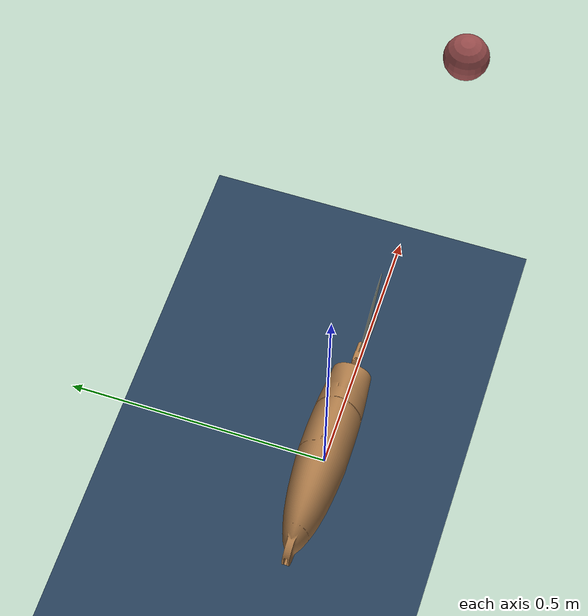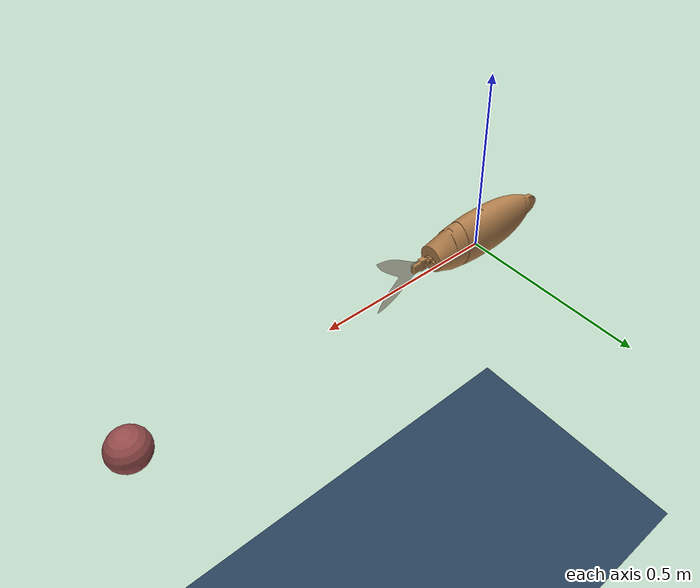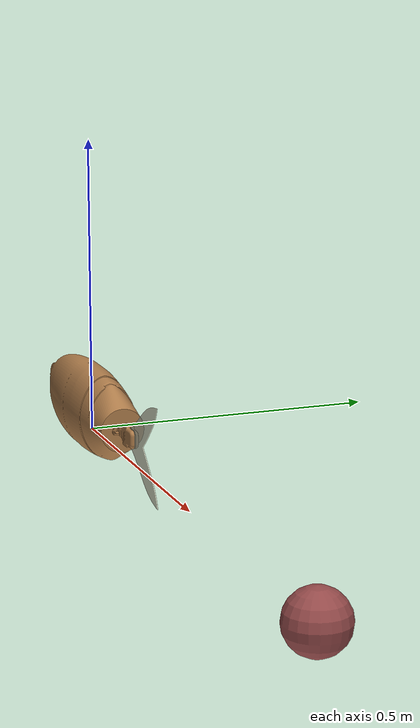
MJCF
<mujoco model="rl_fish">
  <compiler angle="radian" meshdir="../fish_urdf/RL_SIM_MODE_3_description/meshes/"/>

  <option timestep="0.002" integrator="implicit"     density="1000" viscosity="0.001">
    <flag gravity="disable"/>
  </option>

  <visual>
    <headlight ambient=".4 .4 .4" diffuse=".8 .8 .8" specular="0.1 0.1 0.1"/>
    <map znear=".01"/>
    <quality shadowsize="2048"/>
  </visual>

  <asset>
    <texture name="skybox" type="skybox" builtin="gradient" rgb1=".4 .6 .8" rgb2="0 0 0" width="800" height="800"/>
    <texture name="grid" type="2d" builtin="checker" rgb1=".1 .2 .3" rgb2=".2 .3 .4" width="300" height="300" mark="edge" markrgb=".2 .3 .4"/>
    <material name="grid"     texture="grid" texrepeat="2 2" reflectance=".2"/>
    <material name="pla"        rgba=".7 .5 .3 1"/>
    <material name="silicone"   rgba=".4 .6 .8 0.65"/>
    <material name="fiberglass" rgba=".9 .9 .8 0.85"/>
    <material name="target"     rgba=".6 .3 .3 1"/>

    <mesh name="base_link" file="base_link.stl"      scale="0.001 0.001 0.001"/>
    <mesh name="tail_link" file="tail_link_1_1.stl"  scale="0.001 0.001 0.001"/>
    <!-- y축 scale 0.001 → 0.0011: STL 원래 frame에서 y가 두께축이라 0.8mm→0.88mm로 시각화·fluid drag bbox 정합.
         inertial은 명시값을 따르므로 mesh scale에 무관. -->
    <mesh name="fin_1"     file="fin_1.stl"          scale="0.001 0.0011 0.001"/>
  </asset>

  <default>
    <geom material="pla" fluidshape="ellipsoid" fluidcoef="0.4 3.0 2.81 1.0 0.27"/>
    <joint damping="0.005" armature="0.0001"/>
  </default>

  <worldbody>
    <camera name="tracking_top" pos="0 0 1.5" xyaxes="1 0 0 0 1 0" mode="trackcom"/>
    <camera name="tracking_x"   pos="-1 0 .3" xyaxes="0 -1 0 0.342 0 0.940" fovy="60" mode="trackcom"/>
    <camera name="fixed_top"    pos="0 0 4" fovy="20"/>

    <geom name="ground" type="plane" size="3 3 .1" pos="0 0 -1" material="grid" contype="0" conaffinity="0"/>
    <geom name="target" type="sphere" pos="1 0 0" size=".05" material="target" contype="0" conaffinity="0"/>

    <body name="base_link" pos="0 0 0" euler="3.14159 0 0">
      <!-- 3DOF planar: roll/pitch/z 잠금. 수면 영법 가정 (BCF surface swimming).
           axis 부호는 body의 euler="π,0,0" 보정해서 qpos를 world (x, y, yaw)로. -->
      <joint name="root_x"   type="slide" axis="1 0 0"/>
      <joint name="root_y"   type="slide" axis="0 -1 0"/>
      <joint name="root_yaw" type="hinge" axis="0 0 -1"/>
      <!-- PLA 강체부. 질량과 CoM은 MATLAB CG.m 검증값 그대로 (xG=xb=0, zG=0.004535).
           CAD off-diag inertia는 임의 재질 아티팩트라 0으로 정리. -->
      <inertial pos="0 0 0.004535"
                mass="2.4349242520279"
                fullinertia="0.005171 0.031671 0.029391 0 0 0"/>
      <site name="torso" size="0.01" rgba="0 0 0 0"/>
      <geom type="mesh" mesh="base_link"/>

      <body name="tail_link" pos="0.144817 0 -0.03565">
        <!-- 사용자 추정값 (2026-05-18): mass 25g. diaginertia는 mass 비례 scale (factor 0.3579, volume·형상 동일 가정).
             원래 MODE_3 URDF: mass 0.06985, diaginertia 7e-6 5.6e-5 5.4e-5. -->
        <inertial pos="0.05111 0 -0.005349"
                  mass="0.02500"
                  diaginertia="2.51e-6 2.00e-5 1.93e-5"/>
        <joint name="tail_joint" type="hinge" axis="0 0 -1" range="-0.349066 0.349066"
               limited="true" damping="0.087" armature="1.4e-4"
               solreflimit="0.002 1" solimplimit="0.99 0.999 0.0001"/>
        <geom pos="-0.144817 0 0.03565" type="mesh" mesh="tail_link"/>

        <body name="fin_1" pos="0.057 0 -0.011375">
          <joint name="fin_joint" type="hinge" axis="0 0 -1"
                 range="-0.524 0.524" stiffness="0.5" damping="1.05e-4"
                 limited="true" solreflimit="0.005 1" solimplimit="0.95 0.99 0.001"/>
          <geom pos="-0.201817 0 0.047025"
                type="mesh" mesh="fin_1"
                mass="0.024"
                material="fiberglass"/>
        </body>
      </body>
    </body>
  </worldbody>

  <actuator>
    <!-- BL4260 V2 24V + 6.8:1 평기어 트레인. forcerange = stall torque output (V2: 409 mNm × 6.8 × η0.8).
         kp/kv는 ±20° 추종 + 오버슈트 억제. -->
    <position name="tail" joint="tail_joint" ctrlrange="-1 1" gear="0.349"
              kp="100" kv="5" forcerange="-2.2 2.2"/>
  </actuator>

  <sensor>
    <velocimeter name="torso_vel" site="torso"/>
    <gyro        name="torso_gyro" site="torso"/>
    <framepos    name="torso_pos" objtype="site" objname="torso"/>
    <framequat   name="torso_quat" objtype="site" objname="torso"/>
  </sensor>
</mujoco>
